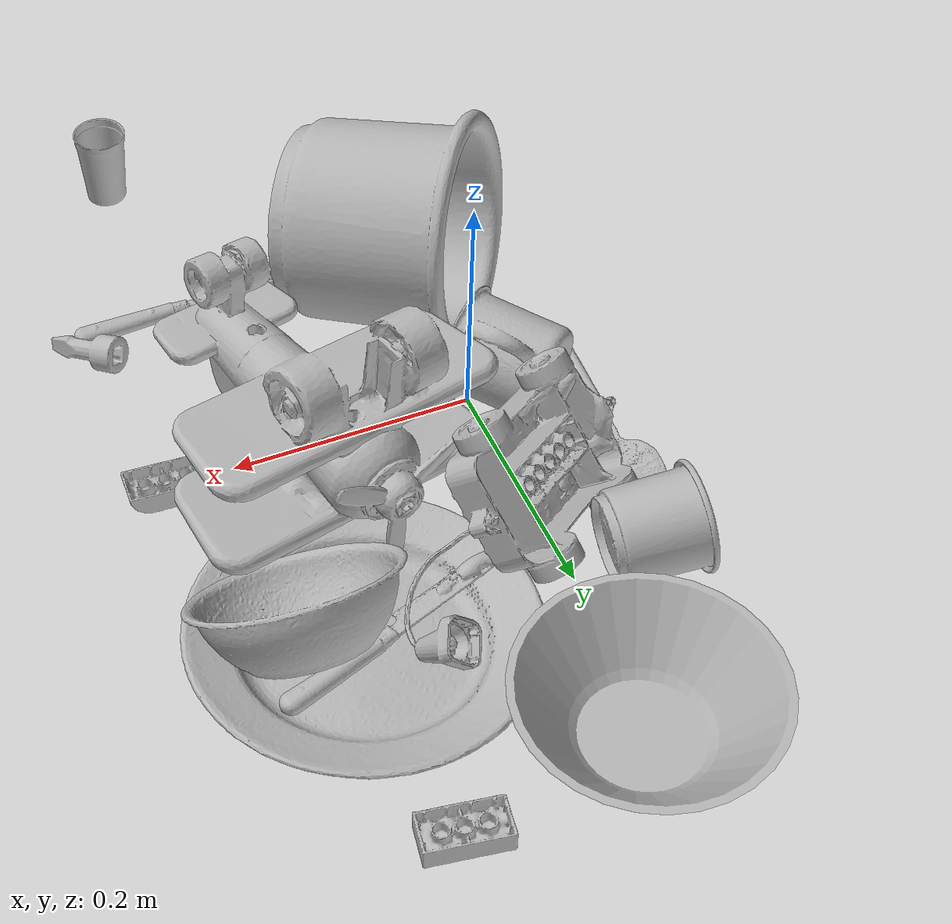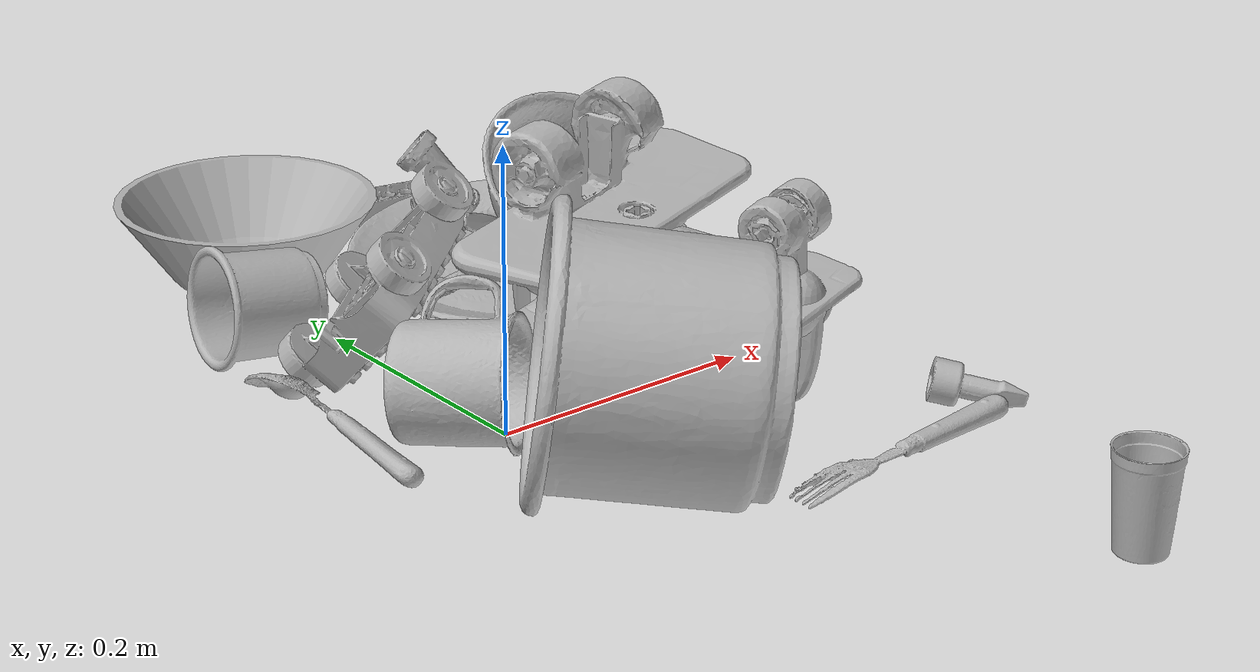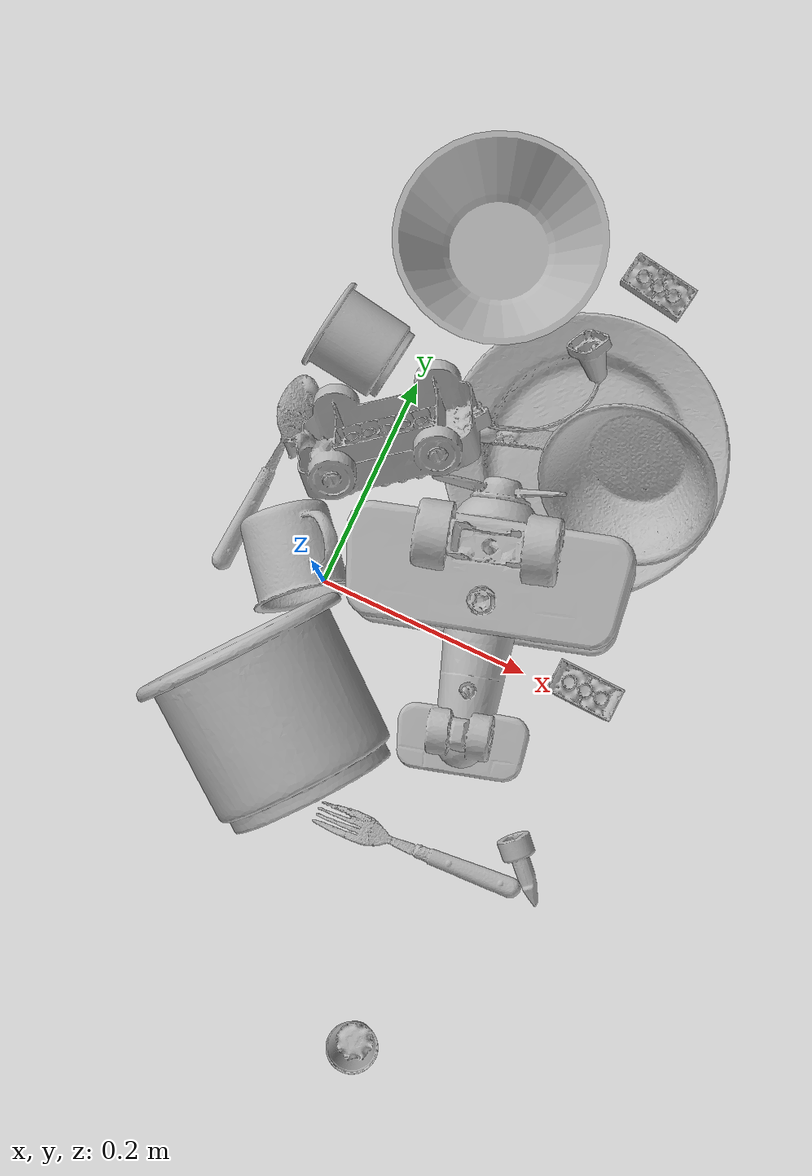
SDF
<sdf version="1.4">
  <world name="default">
    <light name="light1" type="point">
      <pose>0 0 1 0 0 0</pose>
      <diffuse>3 3 3 1</diffuse>
      <specular>3 3 3 1</specular>
    </light>
    <light name="light2" type="point">
      <pose>0 0.5 2 0 0 0</pose>
      <diffuse>1 1 1 1</diffuse>
      <specular>1 1 1 1</specular>
    </light>
    <light name="light3" type="point">
      <pose>0 0.5 2 0 0 0</pose>
      <diffuse>3 3 3 1</diffuse>
      <specular>3 3 3 1</specular>
    </light>
    <scene>
      <ambient>0.7 0.7 0.7</ambient>
    </scene>
    <model name="plate1">
      <link name="link_plate1">
        <collision name="default">
          <geometry>
            <mesh>
              <uri>model://plate/collision_meshes/collision.obj</uri>
              <scale>1.0 1.0 1.0</scale>
            </mesh>
          </geometry>
          <surface>
            <friction>
              <ode>
                <mu>0.5</mu>
                <mu2>0.5</mu2>
              </ode>
            </friction>
          <contact>
        <ode>
            <max_vel>0</max_vel>
            <min_depth>0.0001</min_depth>
            <kp>1e8</kp>
        </ode>
    </contact></surface>
        </collision>
        <visual name="default">
          <geometry>
            <mesh>
              <uri>model://plate/visual_meshes/visual.dae</uri>
              <scale>1.0 1.0 1.0</scale>
            </mesh>
          </geometry>
        </visual>
        <inertial>
          <mass>0.22833794355392456</mass>
          <pose>-0.000604461005423218 0.00027825840516015887 -0.0010561991948634386 0.0022188074693480237 -0.003225470002654536 0.4526028307495764</pose>
          <inertia>
            <ixx>0.0010681693</ixx>
            <iyy>0.0010579526</iyy>
            <izz>0.0020891798</izz>
            <ixy>0</ixy>
            <ixz>0</ixz>
            <iyz>0</iyz>
          </inertia>
        </inertial>
      </link>
      <pose>0.16849097609519958 0.2017105370759964 0.01753620058298111 -0.03391483806960916 -0.042437265728840635 1.3360446944438555</pose>
    </model>
    <model name="cup1">
      <link name="link_cup1">
        <collision name="default">
          <geometry>
            <mesh>
              <uri>model://i_cups/collision_meshes/collision.obj</uri>
              <scale>2.0 2.0 2.0</scale>
            </mesh>
          </geometry>
          <surface>
            <friction>
              <ode>
                <mu>0.5</mu>
                <mu2>0.5</mu2>
              </ode>
            </friction>
          <contact>
        <ode>
            <max_vel>0</max_vel>
            <min_depth>0.0001</min_depth>
            <kp>1e8</kp>
        </ode>
    </contact></surface>
        </collision>
        <visual name="default">
          <geometry>
            <mesh>
              <uri>model://i_cups/visual_meshes/visual.dae</uri>
              <scale>2.0 2.0 2.0</scale>
            </mesh>
          </geometry>
        </visual>
        <inertial>
          <mass>0.4681873917579651</mass>
          <pose>0.00022480281768366694 0.00033594679553061724 -0.001715805265121162 -0.028982833374769763 -0.039873302367341296 -0.3459182567321849</pose>
          <inertia>
            <ixx>0.0025928493</ixx>
            <iyy>0.0026156942</iyy>
            <izz>0.0028979292</izz>
            <ixy>0</ixy>
            <ixz>0</ixz>
            <iyz>0</iyz>
          </inertia>
        </inertial>
      </link>
      <pose>0.01884170062839985 -0.1308743953704834 0.08976525813341141 -1.453384955373916 0.0688136269434621 0.9116052671376875</pose>
    </model>
    <model name="silverware1">
      <link name="link_silverware1">
        <collision name="default">
          <geometry>
            <mesh>
              <uri>model://fork/collision_meshes/collision.obj</uri>
              <scale>1.0 1.0 1.0</scale>
            </mesh>
          </geometry>
          <surface>
            <friction>
              <ode>
                <mu>0.5</mu>
                <mu2>0.5</mu2>
              </ode>
            </friction>
          <contact>
        <ode>
            <max_vel>0</max_vel>
            <min_depth>0.0001</min_depth>
            <kp>1e8</kp>
        </ode>
    </contact></surface>
        </collision>
        <visual name="default">
          <geometry>
            <mesh>
              <uri>model://fork/visual_meshes/visual.dae</uri>
              <scale>1.0 1.0 1.0</scale>
            </mesh>
          </geometry>
        </visual>
        <inertial>
          <mass>0.027571624144911766</mass>
          <pose>-0.02957003377377987 0.00046588233090005815 0.00032188609475269914 -0.013550958023284024 -0.010977835737993834 0.014453901364285019</pose>
          <inertia>
            <ixx>9.665413e-07</ixx>
            <iyy>7.198156e-05</iyy>
            <izz>7.24139e-05</izz>
            <ixy>0</ixy>
            <ixz>0</ixz>
            <iyz>0</iyz>
          </inertia>
        </inertial>
      </link>
      <pose>0.1805880069732666 -0.1860160231590271 0.007446606643497944 -3.063627649271888 0.0028353577305890135 -3.078949015187335</pose>
    </model>
    <model name="silverware2">
      <link name="link_silverware2">
        <collision name="default">
          <geometry>
            <mesh>
              <uri>model://spoon/collision_meshes/collision.obj</uri>
              <scale>1.0 1.0 1.0</scale>
            </mesh>
          </geometry>
          <surface>
            <friction>
              <ode>
                <mu>0.5</mu>
                <mu2>0.5</mu2>
              </ode>
            </friction>
          <contact>
        <ode>
            <max_vel>0</max_vel>
            <min_depth>0.0001</min_depth>
            <kp>1e8</kp>
        </ode>
    </contact></surface>
        </collision>
        <visual name="default">
          <geometry>
            <mesh>
              <uri>model://spoon/visual_meshes/visual.dae</uri>
              <scale>1.0 1.0 1.0</scale>
            </mesh>
          </geometry>
        </visual>
        <inertial>
          <mass>0.026229728013277054</mass>
          <pose>-0.005526318680495024 -0.001603417913429439 -0.0007271656068041921 0.03521671072465583 -0.039065837568760656 0.006150610113583586</pose>
          <inertia>
            <ixx>1.4589405e-06</ixx>
            <iyy>9.980327e-05</iyy>
            <izz>0.00010052276</izz>
            <ixy>0</ixy>
            <ixz>0</ixz>
            <iyz>0</iyz>
          </inertia>
        </inertial>
      </link>
      <pose>-0.08709114789962769 0.06801613420248032 0.010200676508247852 -2.6753591189279384 -0.06022159779988008 1.5252076602452447</pose>
    </model>
    <model name="silverware3">
      <link name="link_silverware3">
        <collision name="default">
          <geometry>
            <mesh>
              <uri>model://knife/collision_meshes/collision.obj</uri>
              <scale>1.0 1.0 1.0</scale>
            </mesh>
          </geometry>
          <surface>
            <friction>
              <ode>
                <mu>0.5</mu>
                <mu2>0.5</mu2>
              </ode>
            </friction>
          <contact>
        <ode>
            <max_vel>0</max_vel>
            <min_depth>0.0001</min_depth>
            <kp>1e8</kp>
        </ode>
    </contact></surface>
        </collision>
        <visual name="default">
          <geometry>
            <mesh>
              <uri>model://knife/visual_meshes/visual.dae</uri>
              <scale>1.0 1.0 1.0</scale>
            </mesh>
          </geometry>
        </visual>
        <inertial>
          <mass>0.02346421591937542</mass>
          <pose>-0.02378525584936142 0.0015275125624611974 5.062017953605391e-05 0.07305400797241687 0.017248417900584085 -0.007409820985288758</pose>
          <inertia>
            <ixx>6.6600956e-07</ixx>
            <iyy>9.0145724e-05</iyy>
            <izz>9.036023e-05</izz>
            <ixy>0</ixy>
            <ixz>0</ixz>
            <iyz>0</iyz>
          </inertia>
        </inertial>
      </link>
      <pose>0.14368197321891785 0.20512805879116058 0.022210925817489624 3.0475818719196597 -0.027826241819458777 -2.812263861752647</pose>
    </model>
    <model name="cup3">
      <link name="link_cup3">
        <collision name="default">
          <geometry>
            <mesh>
              <uri>model://g_cups/collision_meshes/collision.obj</uri>
              <scale>1.0 1.0 1.0</scale>
            </mesh>
          </geometry>
          <surface>
            <friction>
              <ode>
                <mu>0.5</mu>
                <mu2>0.5</mu2>
              </ode>
            </friction>
          <contact>
        <ode>
            <max_vel>0</max_vel>
            <min_depth>0.0001</min_depth>
            <kp>1e8</kp>
        </ode>
    </contact></surface>
        </collision>
        <visual name="default">
          <geometry>
            <mesh>
              <uri>model://g_cups/visual_meshes/visual.dae</uri>
              <scale>1.0 1.0 1.0</scale>
            </mesh>
          </geometry>
        </visual>
        <inertial>
          <mass>0.061065707355737686</mass>
          <pose>-0.0007946277037262917 -4.2064726585522294e-05 -0.002132938476279378 -0.21381528234109023 -0.31410608856426947 0.31118675593786127</pose>
          <inertia>
            <ixx>7.1277376e-05</ixx>
            <iyy>7.10349e-05</iyy>
            <izz>7.383109e-05</izz>
            <ixy>0</ixy>
            <ixz>0</ixz>
            <iyz>0</iyz>
          </inertia>
        </inertial>
      </link>
      <pose>-0.05769297480583191 0.20613279938697815 0.03999374061822891 1.2830764995715953 1.204684665031804 -1.9717741145628478</pose>
    </model>
    <model name="cup4">
      <link name="link_cup4">
        <collision name="default">
          <geometry>
            <mesh>
              <uri>model://mug/collision_meshes/collision.obj</uri>
              <scale>1.0 1.0 1.0</scale>
            </mesh>
          </geometry>
          <surface>
            <friction>
              <ode>
                <mu>0.5</mu>
                <mu2>0.5</mu2>
              </ode>
            </friction>
          <contact>
        <ode>
            <max_vel>0</max_vel>
            <min_depth>0.0001</min_depth>
            <kp>1e8</kp>
        </ode>
    </contact></surface>
        </collision>
        <visual name="default">
          <geometry>
            <mesh>
              <uri>model://mug/visual_meshes/visual.dae</uri>
              <scale>1.0 1.0 1.0</scale>
            </mesh>
          </geometry>
        </visual>
        <inertial>
          <mass>0.23807048797607422</mass>
          <pose>0.009571674279868603 0.0008143257582560182 -0.010947330854833126 -0.1298314387661624 0.08737745525079747 0.05507303490292968</pose>
          <inertia>
            <ixx>0.00023648023</ixx>
            <iyy>0.0002641344</iyy>
            <izz>0.00030547503</izz>
            <ixy>0</ixy>
            <ixz>0</ixz>
            <iyz>0</iyz>
          </inertia>
        </inertial>
      </link>
      <pose>-0.027113523334264755 0.011947538703680038 0.05387363210320473 -1.4268067921064316 0.9728985810776796 -2.3271474204829667</pose>
    </model>
    <model name="cup5">
      <link name="link_cup5">
        <collision name="default">
          <geometry>
            <mesh>
              <uri>model://cup_small/collision_meshes/collision.obj</uri>
              <scale>1.0 1.0 1.0</scale>
            </mesh>
          </geometry>
          <surface>
            <friction>
              <ode>
                <mu>0.5</mu>
                <mu2>0.5</mu2>
              </ode>
            </friction>
          <contact>
        <ode>
            <max_vel>0</max_vel>
            <min_depth>0.0001</min_depth>
            <kp>1e8</kp>
        </ode>
    </contact></surface>
        </collision>
        <visual name="default">
          <geometry>
            <mesh>
              <uri>model://cup_small/visual_meshes/visual.dae</uri>
              <scale>1.0 1.0 1.0</scale>
            </mesh>
          </geometry>
        </visual>
        <inertial>
          <mass>0.034257128834724426</mass>
          <pose>0.00010482469951966777 -0.00033778377110138535 -0.01074282731860876 -0.011493012610900502 -0.015280351102743797 -0.5058271067899499</pose>
          <inertia>
            <ixx>2.0170073e-05</ixx>
            <iyy>2.0274121e-05</iyy>
            <izz>9.106847e-06</izz>
            <ixy>0</ixy>
            <ixz>0</ixz>
            <iyz>0</iyz>
          </inertia>
        </inertial>
      </link>
      <pose>0.20010675489902496 -0.361980140209198 0.03473001718521118 6.343541409015825e-06 -5.73070832122181e-05 0.9991132438371397</pose>
    </model>
    <model name="bowl1">
      <link name="link_bowl1">
        <collision name="default">
          <geometry>
            <mesh>
              <uri>model://bowl/collision_meshes/collision.obj</uri>
              <scale>1.0 1.0 1.0</scale>
            </mesh>
          </geometry>
          <surface>
            <friction>
              <ode>
                <mu>0.5</mu>
                <mu2>0.5</mu2>
              </ode>
            </friction>
          <contact>
        <ode>
            <max_vel>0</max_vel>
            <min_depth>0.0001</min_depth>
            <kp>1e8</kp>
        </ode>
    </contact></surface>
        </collision>
        <visual name="default">
          <geometry>
            <mesh>
              <uri>model://bowl/visual_meshes/visual.dae</uri>
              <scale>1.0 1.0 1.0</scale>
            </mesh>
          </geometry>
        </visual>
        <inertial>
          <mass>0.06465846300125122</mass>
          <pose>0.0002044529392151162 -0.0010302059818059206 -0.0008042643894441426 -0.015764115524798613 0.014546769889283702 0.7140385686011532</pose>
          <inertia>
            <ixx>0.00014852564</ixx>
            <iyy>0.000145207</iyy>
            <izz>0.00024987117</izz>
            <ixy>0</ixy>
            <ixz>0</ixz>
            <iyz>0</iyz>
          </inertia>
        </inertial>
      </link>
      <pose>0.2125045210123062 0.19960089027881622 0.05779895931482315 -0.003429969500955155 -0.670207025010006 1.6049062436601103</pose>
    </model>
    <model name="bowl2">
      <link name="link_bowl2">
        <collision name="default">
          <geometry>
            <mesh>
              <uri>model://bowl_a/collision_meshes/collision.obj</uri>
              <scale>1.0 1.0 1.0</scale>
            </mesh>
          </geometry>
          <surface>
            <friction>
              <ode>
                <mu>0.5</mu>
                <mu2>0.5</mu2>
              </ode>
            </friction>
          <contact>
        <ode>
            <max_vel>0</max_vel>
            <min_depth>0.0001</min_depth>
            <kp>1e8</kp>
        </ode>
    </contact></surface>
        </collision>
        <visual name="default">
          <geometry>
            <mesh>
              <uri>model://bowl_a/visual_meshes/visual.dae</uri>
              <scale>1.0 1.0 1.0</scale>
            </mesh>
          </geometry>
        </visual>
        <inertial>
          <mass>0.4949932396411896</mass>
          <pose>0.00027867621975019574 4.730939326691441e-05 -0.0013765293406322598 -0.0009805412802391578 -0.001093824733375575 -0.19123603072484788</pose>
          <inertia>
            <ixx>0.0014092687</ixx>
            <iyy>0.0014179207</iyy>
            <izz>0.0025064375</izz>
            <ixy>0</ixy>
            <ixz>0</ixz>
            <iyz>0</iyz>
          </inertia>
        </inertial>
      </link>
      <pose>0.017156854271888733 0.3438663184642792 0.03038361482322216 -2.0488093453519423e-05 -5.8247034500654e-07 1.8304336131756045</pose>
    </model>
    <model name="toy1">
      <link name="link_toy1">
        <collision name="default">
          <geometry>
            <mesh>
              <uri>model://a_toy_airplane/collision_meshes/collision.obj</uri>
              <scale>1.0 1.0 1.0</scale>
            </mesh>
          </geometry>
          <surface>
            <friction>
              <ode>
                <mu>0.5</mu>
                <mu2>0.5</mu2>
              </ode>
            </friction>
          <contact>
        <ode>
            <max_vel>0</max_vel>
            <min_depth>0.0001</min_depth>
            <kp>1e8</kp>
        </ode>
    </contact></surface>
        </collision>
        <visual name="default">
          <geometry>
            <mesh>
              <uri>model://a_toy_airplane/visual_meshes/visual.dae</uri>
              <scale>1.0 1.0 1.0</scale>
            </mesh>
          </geometry>
        </visual>
        <inertial>
          <mass>1.5726872682571411</mass>
          <pose>0.025165090337395668 -0.003707318101078272 -0.0011962441494688392 -0.012016975653996446 -0.14663502644886817 0.00414906395026872</pose>
          <inertia>
            <ixx>0.0057111816</ixx>
            <iyy>0.008322349</iyy>
            <izz>0.009744448</izz>
            <ixy>0</ixy>
            <ixz>0</ixz>
            <iyz>0</iyz>
          </inertia>
        </inertial>
      </link>
      <pose>0.15108665823936462 0.018401380628347397 0.07776729762554169 3.0614453032024955 -0.17463963209757366 1.8620187269205404</pose>
    </model>
    <model name="toy2">
      <link name="link_toy2">
        <collision name="default">
          <geometry>
            <mesh>
              <uri>model://g_lego_duplo/collision_meshes/collision.obj</uri>
              <scale>1.0 1.0 1.0</scale>
            </mesh>
          </geometry>
          <surface>
            <friction>
              <ode>
                <mu>0.5</mu>
                <mu2>0.5</mu2>
              </ode>
            </friction>
          <contact>
        <ode>
            <max_vel>0</max_vel>
            <min_depth>0.0001</min_depth>
            <kp>1e8</kp>
        </ode>
    </contact></surface>
        </collision>
        <visual name="default">
          <geometry>
            <mesh>
              <uri>model://g_lego_duplo/visual_meshes/visual.dae</uri>
              <scale>1.0 1.0 1.0</scale>
            </mesh>
          </geometry>
        </visual>
        <inertial>
          <mass>0.27239978313446045</mass>
          <pose>-0.05004768446087837 0.0017554647056385875 0.003880675882101059 0.010962999716487856 0.03810827607734427 -0.09653019061870628</pose>
          <inertia>
            <ixx>0.00039471043</ixx>
            <iyy>0.0011933373</iyy>
            <izz>0.0014929089</izz>
            <ixy>0</ixy>
            <ixz>0</ixz>
            <iyz>0</iyz>
          </inertia>
        </inertial>
      </link>
      <pose>0.04813655465841293 0.17559432983398438 0.07173752039670944 2.2869588622547052 -0.1721554804887625 0.6377624194865652</pose>
    </model>
    <model name="toy3">
      <link name="link_toy3">
        <collision name="default">
          <geometry>
            <mesh>
              <uri>model://e_toy_airplane/collision_meshes/collision.obj</uri>
              <scale>1.0 1.0 1.0</scale>
            </mesh>
          </geometry>
          <surface>
            <friction>
              <ode>
                <mu>0.5</mu>
                <mu2>0.5</mu2>
              </ode>
            </friction>
          <contact>
        <ode>
            <max_vel>0</max_vel>
            <min_depth>0.0001</min_depth>
            <kp>1e8</kp>
        </ode>
    </contact></surface>
        </collision>
        <visual name="default">
          <geometry>
            <mesh>
              <uri>model://e_toy_airplane/visual_meshes/visual.dae</uri>
              <scale>1.0 1.0 1.0</scale>
            </mesh>
          </geometry>
        </visual>
        <inertial>
          <mass>0.02767481654882431</mass>
          <pose>0.00011740472837118432 -2.2482989152194932e-05 -0.011187202297151089 0.005518508312800945 0.009228282632666047 0.1504154330375105</pose>
          <inertia>
            <ixx>8.446671e-06</ixx>
            <iyy>8.360266e-06</iyy>
            <izz>2.5385568e-06</izz>
            <ixy>0</ixy>
            <ixz>0</ixz>
            <iyz>0</iyz>
          </inertia>
        </inertial>
      </link>
      <pose>0.2751200497150421 -0.16133716702461243 0.012305794283747673 -1.7592364567849479 0.1648176002771652 -2.3927239475506243</pose>
    </model>
    <model name="toy4">
      <link name="link_toy4">
        <collision name="default">
          <geometry>
            <mesh>
              <uri>model://c_lego_duplo/collision_meshes/collision.obj</uri>
              <scale>1.0 1.0 1.0</scale>
            </mesh>
          </geometry>
          <surface>
            <friction>
              <ode>
                <mu>0.5</mu>
                <mu2>0.5</mu2>
              </ode>
            </friction>
          <contact>
        <ode>
            <max_vel>0</max_vel>
            <min_depth>0.0001</min_depth>
            <kp>1e8</kp>
        </ode>
    </contact></surface>
        </collision>
        <visual name="default">
          <geometry>
            <mesh>
              <uri>model://c_lego_duplo/visual_meshes/visual.dae</uri>
              <scale>1.0 1.0 1.0</scale>
            </mesh>
          </geometry>
        </visual>
        <inertial>
          <mass>0.027596205472946167</mass>
          <pose>0.0003164597146678716 0.00019464619981590658 0.0010453155264258385 -0.011520800817134696 0.005900104067849837 0.03110033537421094</pose>
          <inertia>
            <ixx>1.0619538e-05</ixx>
            <iyy>3.3922634e-06</iyy>
            <izz>1.2410018e-05</izz>
            <ixy>0</ixy>
            <ixz>0</ixz>
            <iyz>0</iyz>
          </inertia>
        </inertial>
      </link>
      <pose>0.16424120962619781 0.3722054958343506 0.011916783638298512 -3.1350446201497877 -0.00021920279419892317 1.4337195054220426</pose>
    </model>
    <model name="toy5">
      <link name="link_toy5">
        <collision name="default">
          <geometry>
            <mesh>
              <uri>model://a_lego_duplo/collision_meshes/collision.obj</uri>
              <scale>1.0 1.0 1.0</scale>
            </mesh>
          </geometry>
          <surface>
            <friction>
              <ode>
                <mu>0.5</mu>
                <mu2>0.5</mu2>
              </ode>
            </friction>
          <contact>
        <ode>
            <max_vel>0</max_vel>
            <min_depth>0.0001</min_depth>
            <kp>1e8</kp>
        </ode>
    </contact></surface>
        </collision>
        <visual name="default">
          <geometry>
            <mesh>
              <uri>model://a_lego_duplo/visual_meshes/visual.dae</uri>
              <scale>1.0 1.0 1.0</scale>
            </mesh>
          </geometry>
        </visual>
        <inertial>
          <mass>0.011767913587391376</mass>
          <pose>-0.00011337622709106654 0.00018517576972953975 0.0003692608152050525 -0.0141170192796563 -0.00012565406274383194 6.140908251533293e-05</pose>
          <inertia>
            <ixx>1.5087408e-06</ixx>
            <iyy>3.3799095e-06</iyy>
            <izz>4.186769e-06</izz>
            <ixy>0</ixy>
            <ixz>0</ixz>
            <iyz>0</iyz>
          </inertia>
        </inertial>
      </link>
      <pose>0.2567889988422394 0.008767263032495975 0.012124798260629177 -3.1412851281203227 -0.015581271876394237 -0.045493780716639225</pose>
    </model>
  <physics type="ode">
      <max_contacts>50</max_contacts>
      <ode>
        <solver>
          <type>quick</type>
          <iters>75</iters>
        </solver>
        <constraints>
          <contact_max_correcting_vel>0</contact_max_correcting_vel>
          <contact_surface_layer>0</contact_surface_layer>
        </constraints>
      </ode>
    </physics></world>
</sdf>
